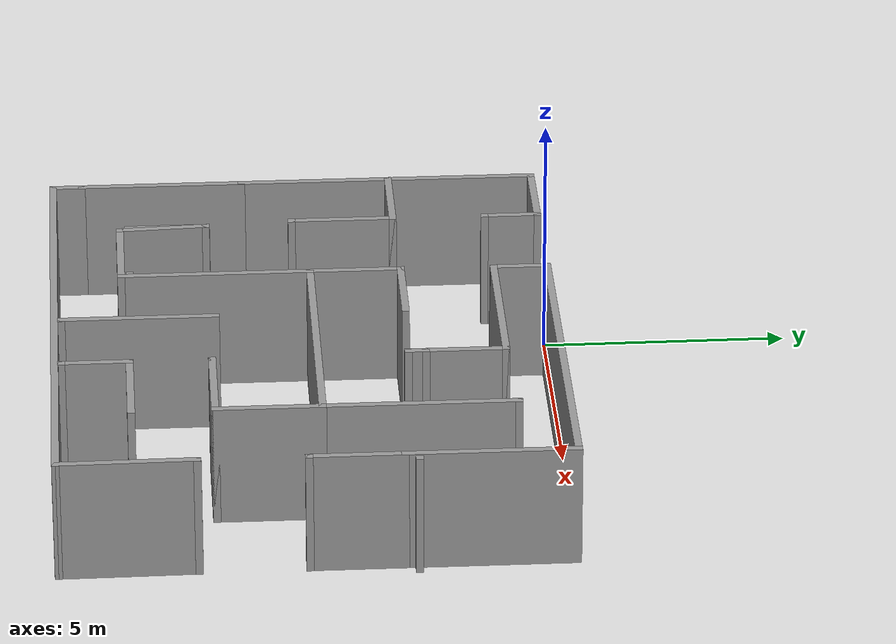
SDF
<?xml version='1.0'?>
<sdf version='1.7'>
  <model name='simple_maze'>
    <pose>3.15188 -5.08373 0 0 -0 0</pose>
    <link name='Wall_10'>
      <collision name='Wall_10_Collision'>
        <geometry>
          <box>
            <size>3.75 0.15 2.5</size>
          </box>
        </geometry>
        <pose>0 0 1.25 0 -0 0</pose>
      </collision>
      <visual name='Wall_10_Visual'>
        <pose>0 0 1.25 0 -0 0</pose>
        <geometry>
          <box>
            <size>3.75 0.15 2.5</size>
          </box>
        </geometry>
        <material>
          <script>
            <uri>file://media/materials/scripts/gazebo.material</uri>
            <name>Gazebo/Grey</name>
          </script>
          <ambient>1 1 1 1</ambient>
        </material>
        <meta>
          <layer>0</layer>
        </meta>
      </visual>
      <pose>-0.11688 3.93723 0 0 -0 0</pose>
    </link>
    <link name='Wall_11'>
      <collision name='Wall_11_Collision'>
        <geometry>
          <box>
            <size>1.75 0.15 2.5</size>
          </box>
        </geometry>
        <pose>0 0 1.25 0 -0 0</pose>
      </collision>
      <visual name='Wall_11_Visual'>
        <pose>0 0 1.25 0 -0 0</pose>
        <geometry>
          <box>
            <size>1.75 0.15 2.5</size>
          </box>
        </geometry>
        <material>
          <script>
            <uri>file://media/materials/scripts/gazebo.material</uri>
            <name>Gazebo/Grey</name>
          </script>
          <ambient>1 1 1 1</ambient>
        </material>
        <meta>
          <layer>0</layer>
        </meta>
      </visual>
      <pose>1.68312 3.13723 0 0 -0 -1.5708</pose>
    </link>
    <link name='Wall_12'>
      <collision name='Wall_12_Collision'>
        <geometry>
          <box>
            <size>0.16 0.15 2.5</size>
          </box>
        </geometry>
        <pose>0 0 1.25 0 -0 0</pose>
      </collision>
      <visual name='Wall_12_Visual'>
        <pose>0 0 1.25 0 -0 0</pose>
        <geometry>
          <box>
            <size>0.16 0.15 2.5</size>
          </box>
        </geometry>
        <material>
          <script>
            <uri>file://media/materials/scripts/gazebo.material</uri>
            <name>Gazebo/Grey</name>
          </script>
          <ambient>0 0 0 1</ambient>
        </material>
        <meta>
          <layer>0</layer>
        </meta>
      </visual>
      <pose>1.68812 2.33723 0 0 -0 0</pose>
    </link>
    <link name='Wall_13'>
      <collision name='Wall_13_Collision'>
        <geometry>
          <box>
            <size>0.5 0.15 2.5</size>
          </box>
        </geometry>
        <pose>0 0 1.25 0 -0 0</pose>
      </collision>
      <visual name='Wall_13_Visual'>
        <pose>0 0 1.25 0 -0 0</pose>
        <geometry>
          <box>
            <size>0.5 0.15 2.5</size>
          </box>
        </geometry>
        <material>
          <script>
            <uri>file://media/materials/scripts/gazebo.material</uri>
            <name>Gazebo/Grey</name>
          </script>
          <ambient>1 1 1 1</ambient>
        </material>
        <meta>
          <layer>0</layer>
        </meta>
      </visual>
      <pose>1.68312 2.16223 0 0 -0 -1.5708</pose>
    </link>
    <link name='Wall_14'>
      <collision name='Wall_14_Collision'>
        <geometry>
          <box>
            <size>0.16 0.15 2.5</size>
          </box>
        </geometry>
        <pose>0 0 1.25 0 -0 0</pose>
      </collision>
      <visual name='Wall_14_Visual'>
        <pose>0 0 1.25 0 -0 0</pose>
        <geometry>
          <box>
            <size>0.16 0.15 2.5</size>
          </box>
        </geometry>
        <material>
          <script>
            <uri>file://media/materials/scripts/gazebo.material</uri>
            <name>Gazebo/Grey</name>
          </script>
          <ambient>0 0 0 1</ambient>
        </material>
        <meta>
          <layer>0</layer>
        </meta>
      </visual>
      <pose>1.68812 1.98723 0 0 -0 0</pose>
    </link>
    <link name='Wall_15'>
      <collision name='Wall_15_Collision'>
        <geometry>
          <box>
            <size>2 0.15 2.5</size>
          </box>
        </geometry>
        <pose>0 0 1.25 0 -0 0</pose>
      </collision>
      <visual name='Wall_15_Visual'>
        <pose>0 0 1.25 0 -0 0</pose>
        <geometry>
          <box>
            <size>2 0.15 2.5</size>
          </box>
        </geometry>
        <material>
          <script>
            <uri>file://media/materials/scripts/gazebo.material</uri>
            <name>Gazebo/Grey</name>
          </script>
          <ambient>1 1 1 1</ambient>
        </material>
        <meta>
          <layer>0</layer>
        </meta>
      </visual>
      <pose>-1.02488 2.03573 0 0 -0 3.14159</pose>
    </link>
    <link name='Wall_16'>
      <collision name='Wall_16_Collision'>
        <geometry>
          <box>
            <size>2 0.15 2.5</size>
          </box>
        </geometry>
        <pose>0 0 1.25 0 -0 0</pose>
      </collision>
      <visual name='Wall_16_Visual'>
        <pose>0 0 1.25 0 -0 0</pose>
        <geometry>
          <box>
            <size>2 0.15 2.5</size>
          </box>
        </geometry>
        <material>
          <script>
            <uri>file://media/materials/scripts/gazebo.material</uri>
            <name>Gazebo/Grey</name>
          </script>
          <ambient>1 1 1 1</ambient>
        </material>
        <meta>
          <layer>0</layer>
        </meta>
      </visual>
      <pose>-1.94988 1.11073 0 0 -0 -1.5708</pose>
    </link>
    <link name='Wall_17'>
      <collision name='Wall_17_Collision'>
        <geometry>
          <box>
            <size>6 0.15 2.5</size>
          </box>
        </geometry>
        <pose>0 0 1.25 0 -0 0</pose>
      </collision>
      <visual name='Wall_17_Visual'>
        <pose>0 0 1.25 0 -0 0</pose>
        <geometry>
          <box>
            <size>6 0.15 2.5</size>
          </box>
        </geometry>
        <material>
          <script>
            <uri>file://media/materials/scripts/gazebo.material</uri>
            <name>Gazebo/Grey</name>
          </script>
          <ambient>1 1 1 1</ambient>
        </material>
        <meta>
          <layer>0</layer>
        </meta>
      </visual>
      <pose>0.975119 0.185729 0 0 -0 0</pose>
    </link>
    <link name='Wall_18'>
      <collision name='Wall_18_Collision'>
        <geometry>
          <box>
            <size>4 0.15 2.5</size>
          </box>
        </geometry>
        <pose>0 0 1.25 0 -0 0</pose>
      </collision>
      <visual name='Wall_18_Visual'>
        <pose>0 0 1.25 0 -0 0</pose>
        <geometry>
          <box>
            <size>4 0.15 2.5</size>
          </box>
        </geometry>
        <material>
          <script>
            <uri>file://media/materials/scripts/gazebo.material</uri>
            <name>Gazebo/Grey</name>
          </script>
          <ambient>1 1 1 1</ambient>
        </material>
        <meta>
          <layer>0</layer>
        </meta>
      </visual>
      <pose>3.90012 2.11073 0 0 -0 1.5708</pose>
    </link>
    <link name='Wall_19'>
      <collision name='Wall_19_Collision'>
        <geometry>
          <box>
            <size>0.16 0.15 2.5</size>
          </box>
        </geometry>
        <pose>0 0 1.25 0 -0 0</pose>
      </collision>
      <visual name='Wall_19_Visual'>
        <pose>0 0 1.25 0 -0 0</pose>
        <geometry>
          <box>
            <size>0.16 0.15 2.5</size>
          </box>
        </geometry>
        <material>
          <script>
            <uri>file://media/materials/scripts/gazebo.material</uri>
            <name>Gazebo/Grey</name>
          </script>
          <ambient>0 0 0 1</ambient>
        </material>
        <meta>
          <layer>0</layer>
        </meta>
      </visual>
      <pose>3.90512 4.03573 0 0 -0 0</pose>
    </link>
    <link name='Wall_22'>
      <collision name='Wall_22_Collision'>
        <geometry>
          <box>
            <size>0.16 0.15 2.5</size>
          </box>
        </geometry>
        <pose>0 0 1.25 0 -0 0</pose>
      </collision>
      <visual name='Wall_22_Visual'>
        <pose>0 0 1.25 0 -0 0</pose>
        <geometry>
          <box>
            <size>0.16 0.15 2.5</size>
          </box>
        </geometry>
        <material>
          <script>
            <uri>file://media/materials/scripts/gazebo.material</uri>
            <name>Gazebo/Grey</name>
          </script>
          <ambient>0 0 0 1</ambient>
        </material>
        <meta>
          <layer>0</layer>
        </meta>
      </visual>
      <pose>6.13296 1.95503 0 0 -0 0</pose>
    </link>
    <link name='Wall_23'>
      <collision name='Wall_23_Collision'>
        <geometry>
          <box>
            <size>8 0.15 2.5</size>
          </box>
        </geometry>
        <pose>0 0 1.25 0 -0 0</pose>
      </collision>
      <visual name='Wall_23_Visual'>
        <pose>0 0 1.25 0 -0 0</pose>
        <geometry>
          <box>
            <size>8 0.15 2.5</size>
          </box>
        </geometry>
        <material>
          <script>
            <uri>file://media/materials/scripts/gazebo.material</uri>
            <name>Gazebo/Grey</name>
          </script>
          <ambient>1 1 1 1</ambient>
        </material>
        <meta>
          <layer>0</layer>
        </meta>
      </visual>
      <pose>2.00812 5.03723 0 0 -0 0</pose>
    </link>
    <link name='Wall_25'>
      <collision name='Wall_25_Collision'>
        <geometry>
          <box>
            <size>0.16 0.15 2.5</size>
          </box>
        </geometry>
        <pose>0 0 1.25 0 -0 0</pose>
      </collision>
      <visual name='Wall_25_Visual'>
        <pose>0 0 1.25 0 -0 0</pose>
        <geometry>
          <box>
            <size>0.16 0.15 2.5</size>
          </box>
        </geometry>
        <material>
          <script>
            <uri>file://media/materials/scripts/gazebo.material</uri>
            <name>Gazebo/Grey</name>
          </script>
          <ambient>0 0 0 1</ambient>
        </material>
        <meta>
          <layer>0</layer>
        </meta>
      </visual>
      <pose>5.93812 -2.31277 0 0 -0 0</pose>
    </link>
    <link name='Wall_26'>
      <collision name='Wall_26_Collision'>
        <geometry>
          <box>
            <size>2.25 0.15 2.5</size>
          </box>
        </geometry>
        <pose>0 0 1.25 0 -0 0</pose>
      </collision>
      <visual name='Wall_26_Visual'>
        <pose>0 0 1.25 0 -0 0</pose>
        <geometry>
          <box>
            <size>2.25 0.15 2.5</size>
          </box>
        </geometry>
        <material>
          <script>
            <uri>file://media/materials/scripts/gazebo.material</uri>
            <name>Gazebo/Grey</name>
          </script>
          <ambient>1 1 1 1</ambient>
        </material>
        <meta>
          <layer>0</layer>
        </meta>
      </visual>
      <pose>3.90012 -0.864271 0 0 -0 -1.5708</pose>
    </link>
    <link name='Wall_27'>
      <collision name='Wall_27_Collision'>
        <geometry>
          <box>
            <size>2.25 0.15 2.5</size>
          </box>
        </geometry>
        <pose>0 0 1.25 0 -0 0</pose>
      </collision>
      <visual name='Wall_27_Visual'>
        <pose>0 0 1.25 0 -0 0</pose>
        <geometry>
          <box>
            <size>2.25 0.15 2.5</size>
          </box>
        </geometry>
        <material>
          <script>
            <uri>file://media/materials/scripts/gazebo.material</uri>
            <name>Gazebo/Grey</name>
          </script>
          <ambient>1 1 1 1</ambient>
        </material>
        <meta>
          <layer>0</layer>
        </meta>
      </visual>
      <pose>2.85012 -1.91427 0 0 -0 3.14159</pose>
    </link>
    <link name='Wall_28'>
      <collision name='Wall_28_Collision'>
        <geometry>
          <box>
            <size>0.16 0.15 2.5</size>
          </box>
        </geometry>
        <pose>0 0 1.25 0 -0 0</pose>
      </collision>
      <visual name='Wall_28_Visual'>
        <pose>0 0 1.25 0 -0 0</pose>
        <geometry>
          <box>
            <size>0.16 0.15 2.5</size>
          </box>
        </geometry>
        <material>
          <script>
            <uri>file://media/materials/scripts/gazebo.material</uri>
            <name>Gazebo/Grey</name>
          </script>
          <ambient>0 0 0 1</ambient>
        </material>
        <meta>
          <layer>0</layer>
        </meta>
      </visual>
      <pose>1.80512 -1.91427 0 0 -0 0</pose>
    </link>
    <link name='Wall_29'>
      <collision name='Wall_29_Collision'>
        <geometry>
          <box>
            <size>2 0.15 2.5</size>
          </box>
        </geometry>
        <pose>0 0 1.25 0 -0 0</pose>
      </collision>
      <visual name='Wall_29_Visual'>
        <pose>0 0 1.25 0 -0 0</pose>
        <geometry>
          <box>
            <size>2 0.15 2.5</size>
          </box>
        </geometry>
        <material>
          <script>
            <uri>file://media/materials/scripts/gazebo.material</uri>
            <name>Gazebo/Grey</name>
          </script>
          <ambient>1 1 1 1</ambient>
        </material>
        <meta>
          <layer>0</layer>
        </meta>
      </visual>
      <pose>-5.20688 5.01373 0 0 -0 3.14159</pose>
    </link>
    <link name='Wall_3'>
      <collision name='Wall_3_Collision'>
        <geometry>
          <box>
            <size>0.16 0.15 2.5</size>
          </box>
        </geometry>
        <pose>0 0 1.25 0 -0 0</pose>
      </collision>
      <visual name='Wall_3_Visual'>
        <pose>0 0 1.25 0 -0 0</pose>
        <geometry>
          <box>
            <size>0.16 0.15 2.5</size>
          </box>
        </geometry>
        <material>
          <script>
            <uri>file://media/materials/scripts/gazebo.material</uri>
            <name>Gazebo/Grey</name>
          </script>
          <ambient>0 0 0 1</ambient>
        </material>
        <meta>
          <layer>0</layer>
        </meta>
      </visual>
      <pose>-4.27688 3.91373 0 0 -0 0</pose>
    </link>
    <link name='Wall_30'>
      <collision name='Wall_30_Collision'>
        <geometry>
          <box>
            <size>6.25 0.15 2.5</size>
          </box>
        </geometry>
        <pose>0 0 1.25 0 -0 0</pose>
      </collision>
      <visual name='Wall_30_Visual'>
        <pose>0 0 1.25 0 -0 0</pose>
        <geometry>
          <box>
            <size>6.25 0.15 2.5</size>
          </box>
        </geometry>
        <material>
          <script>
            <uri>file://media/materials/scripts/gazebo.material</uri>
            <name>Gazebo/Grey</name>
          </script>
          <ambient>1 1 1 1</ambient>
        </material>
        <meta>
          <layer>0</layer>
        </meta>
      </visual>
      <pose>-6.13188 1.96373 0 0 -0 -1.5708</pose>
    </link>
    <link name='Wall_31'>
      <collision name='Wall_31_Collision'>
        <geometry>
          <box>
            <size>3.5 0.15 2.5</size>
          </box>
        </geometry>
        <pose>0 0 1.25 0 -0 0</pose>
      </collision>
      <visual name='Wall_31_Visual'>
        <pose>0 0 1.25 0 -0 0</pose>
        <geometry>
          <box>
            <size>3.5 0.15 2.5</size>
          </box>
        </geometry>
        <material>
          <script>
            <uri>file://media/materials/scripts/gazebo.material</uri>
            <name>Gazebo/Grey</name>
          </script>
          <ambient>1 1 1 1</ambient>
        </material>
        <meta>
          <layer>0</layer>
        </meta>
      </visual>
      <pose>-6.13188 -2.76127 0 0 -0 -1.5708</pose>
    </link>
    <link name='Wall_32'>
      <collision name='Wall_32_Collision'>
        <geometry>
          <box>
            <size>0.75 0.15 2.5</size>
          </box>
        </geometry>
        <pose>0 0 1.25 0 -0 0</pose>
      </collision>
      <visual name='Wall_32_Visual'>
        <pose>0 0 1.25 0 -0 0</pose>
        <geometry>
          <box>
            <size>0.75 0.15 2.5</size>
          </box>
        </geometry>
        <material>
          <script>
            <uri>file://media/materials/scripts/gazebo.material</uri>
            <name>Gazebo/Grey</name>
          </script>
          <ambient>1 1 1 1</ambient>
        </material>
        <meta>
          <layer>0</layer>
        </meta>
      </visual>
      <pose>-6.13188 -4.73627 0 0 -0 -1.5708</pose>
    </link>
    <link name='Wall_33'>
      <collision name='Wall_33_Collision'>
        <geometry>
          <box>
            <size>12.25 0.15 2.5</size>
          </box>
        </geometry>
        <pose>0 0 1.25 0 -0 0</pose>
      </collision>
      <visual name='Wall_33_Visual'>
        <pose>0 0 1.25 0 -0 0</pose>
        <geometry>
          <box>
            <size>12.25 0.15 2.5</size>
          </box>
        </geometry>
        <material>
          <script>
            <uri>file://media/materials/scripts/gazebo.material</uri>
            <name>Gazebo/Grey</name>
          </script>
          <ambient>1 1 1 1</ambient>
        </material>
        <meta>
          <layer>0</layer>
        </meta>
      </visual>
      <pose>-0.08188 -5.03627 0 0 -0 0</pose>
    </link>
    <link name='Wall_34'>
      <collision name='Wall_34_Collision'>
        <geometry>
          <box>
            <size>2.87372 0.15 2.5</size>
          </box>
        </geometry>
        <pose>0 0 1.25 0 -0 0</pose>
      </collision>
      <visual name='Wall_34_Visual'>
        <pose>0 0 1.25 0 -0 0</pose>
        <geometry>
          <box>
            <size>2.87372 0.15 2.5</size>
          </box>
        </geometry>
        <material>
          <script>
            <uri>file://media/materials/scripts/gazebo.material</uri>
            <name>Gazebo/Grey</name>
          </script>
          <ambient>1 1 1 1</ambient>
        </material>
        <meta>
          <layer>0</layer>
        </meta>
      </visual>
      <pose>5.95062 -3.67452 0 0 -0 1.58365</pose>
    </link>
    <link name='Wall_35'>
      <collision name='Wall_35_Collision'>
        <geometry>
          <box>
            <size>0.16 0.15 2.5</size>
          </box>
        </geometry>
        <pose>0 0 1.25 0 -0 0</pose>
      </collision>
      <visual name='Wall_35_Visual'>
        <pose>0 0 1.25 0 -0 0</pose>
        <geometry>
          <box>
            <size>0.16 0.15 2.5</size>
          </box>
        </geometry>
        <material>
          <script>
            <uri>file://media/materials/scripts/gazebo.material</uri>
            <name>Gazebo/Grey</name>
          </script>
          <ambient>0 0 0 1</ambient>
        </material>
        <meta>
          <layer>0</layer>
        </meta>
      </visual>
      <pose>5.93812 -2.31277 0 0 -0 0</pose>
    </link>
    <link name='Wall_36'>
      <collision name='Wall_36_Collision'>
        <geometry>
          <box>
            <size>2 0.15 2.5</size>
          </box>
        </geometry>
        <pose>0 0 1.25 0 -0 0</pose>
      </collision>
      <visual name='Wall_36_Visual'>
        <pose>0 0 1.25 0 -0 0</pose>
        <geometry>
          <box>
            <size>2 0.15 2.5</size>
          </box>
        </geometry>
        <material>
          <script>
            <uri>file://media/materials/scripts/gazebo.material</uri>
            <name>Gazebo/Grey</name>
          </script>
          <ambient>1 1 1 1</ambient>
        </material>
        <meta>
          <layer>0</layer>
        </meta>
      </visual>
      <pose>-5.21296 1.99979 0 0 -0 0</pose>
    </link>
    <link name='Wall_37'>
      <collision name='Wall_37_Collision'>
        <geometry>
          <box>
            <size>2.25 0.15 2.5</size>
          </box>
        </geometry>
        <pose>0 0 1.25 0 -0 0</pose>
      </collision>
      <visual name='Wall_37_Visual'>
        <pose>0 0 1.25 0 -0 0</pose>
        <geometry>
          <box>
            <size>2.25 0.15 2.5</size>
          </box>
        </geometry>
        <material>
          <script>
            <uri>file://media/materials/scripts/gazebo.material</uri>
            <name>Gazebo/Grey</name>
          </script>
          <ambient>1 1 1 1</ambient>
        </material>
        <meta>
          <layer>0</layer>
        </meta>
      </visual>
      <pose>-4.28796 0.94979 0 0 -0 -1.5708</pose>
    </link>
    <link name='Wall_38'>
      <collision name='Wall_38_Collision'>
        <geometry>
          <box>
            <size>0.16 0.15 2.5</size>
          </box>
        </geometry>
        <pose>0 0 1.25 0 -0 0</pose>
      </collision>
      <visual name='Wall_38_Visual'>
        <pose>0 0 1.25 0 -0 0</pose>
        <geometry>
          <box>
            <size>0.16 0.15 2.5</size>
          </box>
        </geometry>
        <material>
          <script>
            <uri>file://media/materials/scripts/gazebo.material</uri>
            <name>Gazebo/Grey</name>
          </script>
          <ambient>0 0 0 1</ambient>
        </material>
        <meta>
          <layer>0</layer>
        </meta>
      </visual>
      <pose>-4.28296 -0.10021 0 0 -0 0</pose>
    </link>
    <link name='Wall_39'>
      <collision name='Wall_39_Collision'>
        <geometry>
          <box>
            <size>1.75 0.15 2.5</size>
          </box>
        </geometry>
        <pose>0 0 1.25 0 -0 0</pose>
      </collision>
      <visual name='Wall_39_Visual'>
        <pose>0 0 1.25 0 -0 0</pose>
        <geometry>
          <box>
            <size>1.75 0.15 2.5</size>
          </box>
        </geometry>
        <material>
          <script>
            <uri>file://media/materials/scripts/gazebo.material</uri>
            <name>Gazebo/Grey</name>
          </script>
          <ambient>1 1 1 1</ambient>
        </material>
        <meta>
          <layer>0</layer>
        </meta>
      </visual>
      <pose>-4.14873 -2.68615 0 0 -0 -1.5708</pose>
    </link>
    <link name='Wall_43'>
      <collision name='Wall_43_Collision'>
        <geometry>
          <box>
            <size>0.16 0.15 2.5</size>
          </box>
        </geometry>
        <pose>0 0 1.25 0 -0 0</pose>
      </collision>
      <visual name='Wall_43_Visual'>
        <pose>0 0 1.25 0 -0 0</pose>
        <geometry>
          <box>
            <size>0.16 0.15 2.5</size>
          </box>
        </geometry>
        <material>
          <script>
            <uri>file://media/materials/scripts/gazebo.material</uri>
            <name>Gazebo/Grey</name>
          </script>
          <ambient>0 0 0 1</ambient>
        </material>
        <meta>
          <layer>0</layer>
        </meta>
      </visual>
      <pose>-2.04373 -3.48615 0 0 -0 0</pose>
    </link>
    <link name='Wall_44'>
      <collision name='Wall_44_Collision'>
        <geometry>
          <box>
            <size>3.25 0.15 2.5</size>
          </box>
        </geometry>
        <pose>0 0 1.25 0 -0 0</pose>
      </collision>
      <visual name='Wall_44_Visual'>
        <pose>0 0 1.25 0 -0 0</pose>
        <geometry>
          <box>
            <size>3.25 0.15 2.5</size>
          </box>
        </geometry>
        <material>
          <script>
            <uri>file://media/materials/scripts/gazebo.material</uri>
            <name>Gazebo/Grey</name>
          </script>
          <ambient>1 1 1 1</ambient>
        </material>
        <meta>
          <layer>0</layer>
        </meta>
      </visual>
      <pose>-0.077742 -3.34363 0 0 -0 -1.5708</pose>
    </link>
    <link name='Wall_45'>
      <collision name='Wall_45_Collision'>
        <geometry>
          <box>
            <size>0.16 0.15 2.5</size>
          </box>
        </geometry>
        <pose>0 0 1.25 0 -0 0</pose>
      </collision>
      <visual name='Wall_45_Visual'>
        <pose>0 0 1.25 0 -0 0</pose>
        <geometry>
          <box>
            <size>0.16 0.15 2.5</size>
          </box>
        </geometry>
        <material>
          <script>
            <uri>file://media/materials/scripts/gazebo.material</uri>
            <name>Gazebo/Grey</name>
          </script>
          <ambient>0 0 0 1</ambient>
        </material>
        <meta>
          <layer>0</layer>
        </meta>
      </visual>
      <pose>-0.072742 -4.89363 0 0 -0 0</pose>
    </link>
    <link name='Wall_46'>
      <collision name='Wall_46_Collision'>
        <geometry>
          <box>
            <size>2.25 0.15 2.5</size>
          </box>
        </geometry>
        <pose>0 0 1.25 0 -0 0</pose>
      </collision>
      <visual name='Wall_46_Visual'>
        <pose>0 0 1.25 0 -0 0</pose>
        <geometry>
          <box>
            <size>2.25 0.15 2.5</size>
          </box>
        </geometry>
        <material>
          <script>
            <uri>file://media/materials/scripts/gazebo.material</uri>
            <name>Gazebo/Grey</name>
          </script>
          <ambient>1 1 1 1</ambient>
        </material>
        <meta>
          <layer>0</layer>
        </meta>
      </visual>
      <pose>2.85072 -3.55156 0 0 -0 3.14159</pose>
    </link>
    <link name='Wall_47'>
      <collision name='Wall_47_Collision'>
        <geometry>
          <box>
            <size>1.5 0.15 2.5</size>
          </box>
        </geometry>
        <pose>0 0 1.25 0 -0 0</pose>
      </collision>
      <visual name='Wall_47_Visual'>
        <pose>0 0 1.25 0 -0 0</pose>
        <geometry>
          <box>
            <size>1.5 0.15 2.5</size>
          </box>
        </geometry>
        <material>
          <script>
            <uri>file://media/materials/scripts/gazebo.material</uri>
            <name>Gazebo/Grey</name>
          </script>
          <ambient>1 1 1 1</ambient>
        </material>
        <meta>
          <layer>0</layer>
        </meta>
      </visual>
      <pose>1.80072 -4.22656 0 0 -0 -1.5708</pose>
    </link>
    <link name='Wall_48'>
      <collision name='Wall_48_Collision'>
        <geometry>
          <box>
            <size>0.16 0.15 2.5</size>
          </box>
        </geometry>
        <pose>0 0 1.25 0 -0 0</pose>
      </collision>
      <visual name='Wall_48_Visual'>
        <pose>0 0 1.25 0 -0 0</pose>
        <geometry>
          <box>
            <size>0.16 0.15 2.5</size>
          </box>
        </geometry>
        <material>
          <script>
            <uri>file://media/materials/scripts/gazebo.material</uri>
            <name>Gazebo/Grey</name>
          </script>
          <ambient>0 0 0 1</ambient>
        </material>
        <meta>
          <layer>0</layer>
        </meta>
      </visual>
      <pose>1.80572 -4.90156 0 0 -0 0</pose>
    </link>
    <link name='Wall_49'>
      <collision name='Wall_49_Collision'>
        <geometry>
          <box>
            <size>4 0.15 2.5</size>
          </box>
        </geometry>
        <pose>0 0 1.25 0 -0 0</pose>
      </collision>
      <visual name='Wall_49_Visual'>
        <pose>0 0 1.25 0 -0 0</pose>
        <geometry>
          <box>
            <size>4 0.15 2.5</size>
          </box>
        </geometry>
        <material>
          <script>
            <uri>file://media/materials/scripts/gazebo.material</uri>
            <name>Gazebo/Grey</name>
          </script>
          <ambient>1 1 1 1</ambient>
        </material>
        <meta>
          <layer>0</layer>
        </meta>
      </visual>
      <pose>-1.94988 -1.73927 0 0 -0 -1.5708</pose>
    </link>
    <link name='Wall_50'>
      <collision name='Wall_50_Collision'>
        <geometry>
          <box>
            <size>2.25 0.15 2.5</size>
          </box>
        </geometry>
        <pose>0 0 1.25 0 -0 0</pose>
      </collision>
      <visual name='Wall_50_Visual'>
        <pose>0 0 1.25 0 -0 0</pose>
        <geometry>
          <box>
            <size>2.25 0.15 2.5</size>
          </box>
        </geometry>
        <material>
          <script>
            <uri>file://media/materials/scripts/gazebo.material</uri>
            <name>Gazebo/Grey</name>
          </script>
          <ambient>1 1 1 1</ambient>
        </material>
        <meta>
          <layer>0</layer>
        </meta>
      </visual>
      <pose>-2.99988 -3.66427 0 0 -0 3.14159</pose>
    </link>
    <link name='Wall_51'>
      <collision name='Wall_51_Collision'>
        <geometry>
          <box>
            <size>1.93086 0.15 2.5</size>
          </box>
        </geometry>
        <pose>0 0 1.25 0 -0 0</pose>
      </collision>
      <visual name='Wall_51_Visual'>
        <pose>0 0 1.25 0 -0 0</pose>
        <geometry>
          <box>
            <size>1.93086 0.15 2.5</size>
          </box>
        </geometry>
        <material>
          <script>
            <uri>file://media/materials/scripts/gazebo.material</uri>
            <name>Gazebo/Grey</name>
          </script>
          <ambient>1 1 1 1</ambient>
        </material>
        <meta>
          <layer>0</layer>
        </meta>
      </visual>
      <pose>-4.09931 -2.77521 0 0 -0 1.62633</pose>
    </link>
    <link name='Wall_52'>
      <collision name='Wall_52_Collision'>
        <geometry>
          <box>
            <size>0.16 0.15 2.5</size>
          </box>
        </geometry>
        <pose>0 0 1.25 0 -0 0</pose>
      </collision>
      <visual name='Wall_52_Visual'>
        <pose>0 0 1.25 0 -0 0</pose>
        <geometry>
          <box>
            <size>0.16 0.15 2.5</size>
          </box>
        </geometry>
        <material>
          <script>
            <uri>file://media/materials/scripts/gazebo.material</uri>
            <name>Gazebo/Grey</name>
          </script>
          <ambient>0 0 0 1</ambient>
        </material>
        <meta>
          <layer>0</layer>
        </meta>
      </visual>
      <pose>-4.14373 -1.88615 0 0 -0 0</pose>
    </link>
    <link name='Wall_53'>
      <collision name='Wall_53_Collision'>
        <geometry>
          <box>
            <size>3.5 0.15 2.5</size>
          </box>
        </geometry>
        <pose>0 0 1.25 0 -0 0</pose>
      </collision>
      <visual name='Wall_53_Visual'>
        <pose>0 0 1.25 0 -0 0</pose>
        <geometry>
          <box>
            <size>3.5 0.15 2.5</size>
          </box>
        </geometry>
        <material>
          <script>
            <uri>file://media/materials/scripts/gazebo.material</uri>
            <name>Gazebo/Grey</name>
          </script>
          <ambient>1 1 1 1</ambient>
        </material>
        <meta>
          <layer>0</layer>
        </meta>
      </visual>
      <pose>5.93312 3.36223 0 0 -0 -1.5708</pose>
    </link>
    <link name='Wall_54'>
      <collision name='Wall_54_Collision'>
        <geometry>
          <box>
            <size>2 0.15 2.5</size>
          </box>
        </geometry>
        <pose>0 0 1.25 0 -0 0</pose>
      </collision>
      <visual name='Wall_54_Visual'>
        <pose>0 0 1.25 0 -0 0</pose>
        <geometry>
          <box>
            <size>2 0.15 2.5</size>
          </box>
        </geometry>
        <material>
          <script>
            <uri>file://media/materials/scripts/gazebo.material</uri>
            <name>Gazebo/Grey</name>
          </script>
          <ambient>1 1 1 1</ambient>
        </material>
        <meta>
          <layer>0</layer>
        </meta>
      </visual>
      <pose>5.93312 0.762229 0 0 -0 -1.5708</pose>
    </link>
    <link name='Wall_55'>
      <collision name='Wall_55_Collision'>
        <geometry>
          <box>
            <size>0.16 0.15 2.5</size>
          </box>
        </geometry>
        <pose>0 0 1.25 0 -0 0</pose>
      </collision>
      <visual name='Wall_55_Visual'>
        <pose>0 0 1.25 0 -0 0</pose>
        <geometry>
          <box>
            <size>0.16 0.15 2.5</size>
          </box>
        </geometry>
        <material>
          <script>
            <uri>file://media/materials/scripts/gazebo.material</uri>
            <name>Gazebo/Grey</name>
          </script>
          <ambient>0 0 0 1</ambient>
        </material>
        <meta>
          <layer>0</layer>
        </meta>
      </visual>
      <pose>5.93812 -0.162771 0 0 -0 0</pose>
    </link>
    <link name='Wall_6'>
      <collision name='Wall_6_Collision'>
        <geometry>
          <box>
            <size>1.25 0.15 2.5</size>
          </box>
        </geometry>
        <pose>0 0 1.25 0 -0 0</pose>
      </collision>
      <visual name='Wall_6_Visual'>
        <pose>0 0 1.25 0 -0 0</pose>
        <geometry>
          <box>
            <size>1.25 0.15 2.5</size>
          </box>
        </geometry>
        <material>
          <script>
            <uri>file://media/materials/scripts/gazebo.material</uri>
            <name>Gazebo/Grey</name>
          </script>
          <ambient>1 1 1 1</ambient>
        </material>
        <meta>
          <layer>0</layer>
        </meta>
      </visual>
      <pose>-4.28188 4.46373 0 0 -0 1.5708</pose>
    </link>
    <link name='Wall_9'>
      <collision name='Wall_9_Collision'>
        <geometry>
          <box>
            <size>1.25 0.15 2.5</size>
          </box>
        </geometry>
        <pose>0 0 1.25 0 -0 0</pose>
      </collision>
      <visual name='Wall_9_Visual'>
        <pose>0 0 1.25 0 -0 0</pose>
        <geometry>
          <box>
            <size>1.25 0.15 2.5</size>
          </box>
        </geometry>
        <material>
          <script>
            <uri>file://media/materials/scripts/gazebo.material</uri>
            <name>Gazebo/Grey</name>
          </script>
          <ambient>1 1 1 1</ambient>
        </material>
        <meta>
          <layer>0</layer>
        </meta>
      </visual>
      <pose>-1.91688 4.48723 0 0 -0 -1.5708</pose>
    </link>
    <static>1</static>
  </model>
</sdf>
